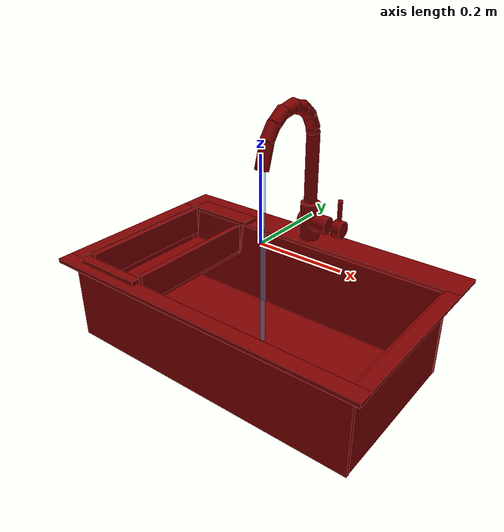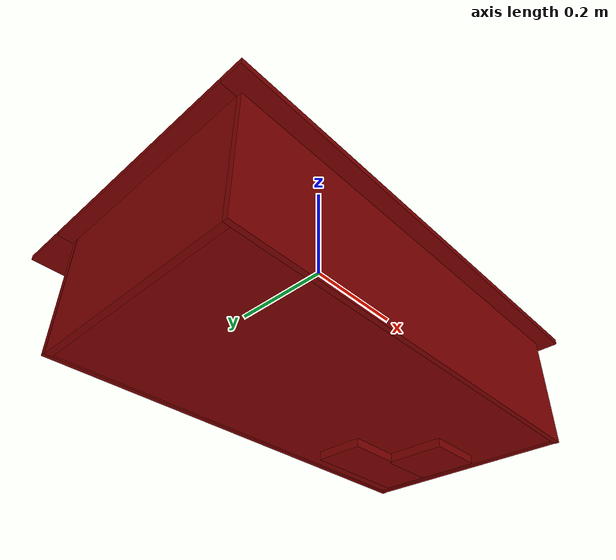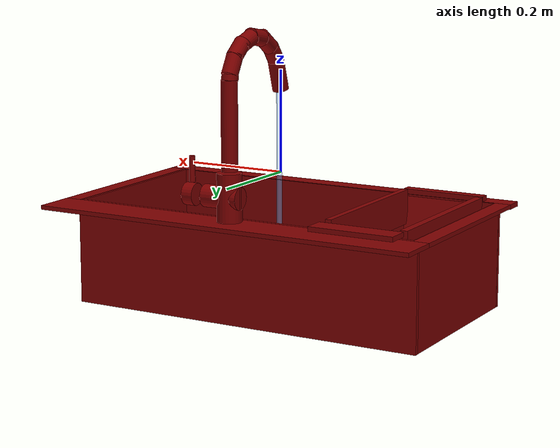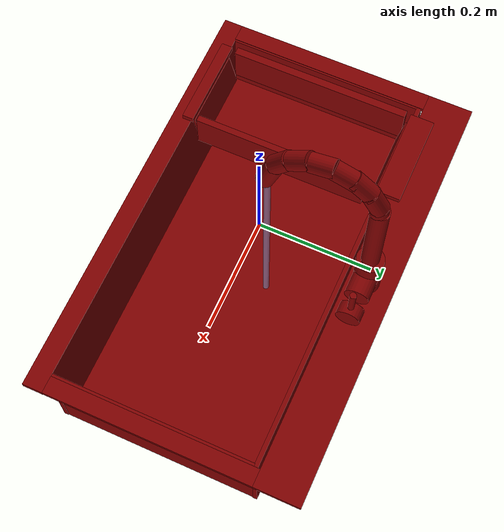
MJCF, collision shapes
<?xml version='1.0' encoding='UTF-8'?>
<mujoco model="model">
  <option timestep="0.002" gravity="0.0 0.0 -9.81"/>
  <compiler angle="radian"/>
  <asset>
    <mesh file="visuals/handle.obj" name="handle_vis"/>
    <mesh file="visuals/Body001.obj" name="Body001_vis"/>
    <mesh file="visuals/Shelf001.obj" name="Shelf001_vis"/>
    <mesh file="visuals/spout.obj" name="spout_vis"/>
    <texture file="visuals/T_BC001.png" name="Body001_material" type="2d"/>
    <material name="Body001_material" rgba="1 1 1 1.0" texture="Body001_material" shininess="0.5" specular="1"/>
    <texture file="visuals/T_BC001.png" name="handle_material" type="2d"/>
    <material name="handle_material" rgba="1 1 1 1.0" texture="handle_material" shininess="0.5" specular="0.3103448502657381"/>
    <texture file="visuals/T_BC001.png" name="Shelf001_material" type="2d"/>
    <material name="Shelf001_material" rgba="1 1 1 1.0" texture="Shelf001_material" shininess="0.5" specular="2"/>
    <texture file="visuals/T_BC001.png" name="spout_material" type="2d"/>
    <material name="spout_material" rgba="1 1 1 1.0" texture="spout_material" shininess="0.5" specular="1"/>
  </asset>
  <default>
    <default class="visual">
      <geom conaffinity="0" contype="0" group="1" type="mesh"/>
    </default>
    <default class="collision">
      <geom group="0" rgba="0.5 0 0 0.5" solimp="0.998 0.998 0.001" solref="0.001 2"/>
    </default>
    <default class="spawn">
      <geom group="0" rgba="1 1 1 0.5" contype="0" conaffinity="0"/>
      <site group="0" rgba="1 1 1 0.5"/>
    </default>
    <default class="region">
      <geom group="1" conaffinity="0" contype="0" rgba="0 1 0 0"/>
    </default>
  </default>
  <worldbody>
    <body>
      <body name="object">
        <geom mesh="Body001_vis" type="mesh" solimp="0.998 0.998 0.001" solref="0.001 1" friction="0.95 0.3 0.1" class="visual" material="Body001_material"/>
        <geom class="collision" type="box" pos="0.00000004 0.20637435 -0.06735937" size="0.39519259333610535 0.04176409915089607 0.004091817419975996" quat="1.0 0.0 0.0 0.0"/>
        <geom class="collision" type="box" pos="-0.00000002 -0.23008915 -0.06822311" size="0.39519232511520386 0.01815597340464592 0.004955556709319353" quat="1.0 0.0 0.0 0.0"/>
        <geom class="collision" type="box" pos="-0.37927532 -0.02353512 -0.06738956" size="0.015911314636468887 0.18962140381336212 0.004121942445635796" quat="1.0 0.0 0.0 0.0"/>
        <geom class="collision" type="box" pos="0.37956685 -0.02353512 -0.06736496" size="0.015619810670614243 0.1896211802959442 0.004097337834537029" quat="1.0 0.0 0.0 0.0"/>
        <geom class="collision" type="box" pos="0.36319739 -0.02948447 -0.16913989" size="0.004510981496423483 0.1830652505159378 0.10467592626810074" quat="1.0 0.0 0.0 0.0"/>
        <geom class="collision" type="box" pos="-0.36474544 -0.02948447 -0.16913989" size="0.005223824642598629 0.1830650120973587 0.10467581450939178" quat="1.0 0.0 0.0 0.0"/>
        <geom class="collision" type="box" pos="-0.00070086 -0.21607165 -0.16913989" size="0.369448184967041 0.004152165725827217 0.10467569530010223" quat="1.0 0.0 0.0 0.0"/>
        <geom class="collision" type="box" pos="-0.00092678 0.15651350 -0.16913989" size="0.36971351504325867 0.003984092269092798 0.10467558354139328" quat="1.0 0.0 0.0 0.0"/>
        <geom class="collision" type="box" pos="-0.00282185 -0.02706097 -0.26766643" size="0.36301255226135254 0.18428730964660645 0.0037265485152602196" quat="1.0 0.0 0.0 0.0"/>
        <geom class="collision" type="cylinder" pos="-0.00332899 0.19647934 -0.01538238" size="0.023983795195817947 0.04595727100968361" quat="1.0 0.0 0.0 0.0"/>
        <geom class="collision" type="cylinder" pos="0.01108128 0.19647934 -0.01658595" size="0.021613165736198425 0.038016535341739655" quat="0.7071068286895752 -0.0 0.7071067690849304 0.0"/>
        <geom class="collision" type="box" pos="0.22211067 0.06790739 -0.27878553" size="0.09791813045740128 0.04313885420560837 0.007659433409571648" quat="1.0 0.0 0.0 0.0"/>
        <geom class="collision" type="box" pos="0.26883179 -0.02330551 -0.27878553" size="0.05119697377085686 0.05309313163161278 0.007659432012587786" quat="1.0 0.0 0.0 0.0"/>
        <body name="handle">
          <joint axis="1.0 0.0 0.0" pos="0.07444862 0.19651009 -0.01711256" limited="true" name="handle_temp_joint" type="hinge" range="-0.7853981633974483 0.7853981633974483" damping="0.5" frictionloss="1" armature="2"/>
          <joint axis="0.0 1.0 0.0" pos="0.07444862 0.19651009 -0.01711256" limited="true" name="handle_joint" type="hinge" range="0 0.5" damping="0.5" frictionloss="1" armature="2"/>
          <geom mesh="handle_vis" type="mesh" solimp="0.998 0.998 0.001" solref="0.001 1" friction="0.95 0.3 0.1" class="visual" material="handle_material"/>
          <geom class="collision" type="cylinder" pos="0.07855663 0.19713252 -0.01680377" size="0.021303892135620117 0.011302345432341099" quat="0.7071068286895752 -0.0 0.7071067690849304 0.0"/>
          <geom name="handle_main" class="collision" type="cylinder" pos="0.07769476 0.19686373 0.03081148" size="0.005681407637894154 0.024712152779102325" quat="1.0 0.0 0.0 0.0"/>
        </body>
        <body name="Shelf001">
          <joint axis="0.0 0.0 1.0" pos="-0.25478467 -0.01744983 -0.09954712" limited="true" name="Shelf001_joint" range="0.0 0.1" type="slide" damping="1" frictionloss="1" armature=".01" stiffness="0.05"/>
          <geom mesh="Shelf001_vis" type="mesh" solimp="0.998 0.998 0.001" solref="0.001 1" friction="0.95 0.3 0.1" class="visual" material="Shelf001_material"/>
          <geom class="collision" type="box" pos="-0.33398774 -0.02822587 -0.08729640" size="0.007228539790958166 0.1687678098678589 0.03499460965394974" quat="1.0 0.0 0.0 0.0"/>
          <geom class="collision" type="box" pos="-0.17308277 -0.03690955 -0.08729640" size="0.005995806772261858 0.16302910447120667 0.03499455377459526" quat="1.0 0.0 0.0 0.0"/>
          <geom class="collision" type="box" pos="-0.24860589 -0.20206940 -0.10036150" size="0.07432298362255096 0.0024261516518890858 0.03369440883398056" quat="0.9940372705459595 0.10904084146022797 0.0 0.0"/>
          <geom class="collision" type="box" pos="-0.24860589 0.14222980 -0.09760116" size="0.07432298362255096 0.0024261516518890858 0.03723553195595741" quat="0.9963814616203308 -0.08499402552843094 -0.0 0.0"/>
          <geom class="collision" type="box" pos="-0.25271779 -0.02975524 -0.13525485" size="0.07255373150110245 0.16592520475387573 0.0029326912481337786" quat="1.0 0.0 0.0 0.0"/>
          <geom class="collision" type="box" pos="-0.25245929 0.17150735 -0.05747816" size="0.08537273108959198 0.022228378802537918 0.004666319582611322" quat="1.0 0.0 0.0 0.0"/>
          <geom class="collision" type="box" pos="-0.25245929 -0.21764038 -0.05787031" size="0.08537261933088303 0.010309925302863121 0.005058464128524065" quat="1.0 0.0 0.0 0.0"/>
        </body>
        <body name="spout">
          <joint axis="0.0 0.0 1.0" pos="-0.00280519 0.19689568 0.13014515" limited="true" name="spout_joint" range="-1.1344640137963142 1.1344640137963142" type="hinge" damping="10"/>
          <site type="cylinder" rgba="0.5 0.75 1 0.5" size="0.005716228857636452 0.21865792572498322" pos="-0.00350536 0.01167345 -0.05062795" name="water"/>
          <geom mesh="spout_vis" type="mesh" solimp="0.998 0.998 0.001" solref="0.001 1" friction="0.95 0.3 0.1" class="visual" material="spout_material"/>
          <geom class="collision" type="cylinder" pos="-0.00364665 0.19572318 0.11842547" size="0.015766173601150513 0.08489116281270981" quat="1.0 0.0 0.0 0.0" name="spout_main"/>
          <geom class="collision" type="cylinder" pos="-0.00364665 0.18448438 0.22890529" size="0.015766173601150513 0.020500902086496353" quat="0.9670015573501587 0.254770427942276 0.0 0.0"/>
          <geom class="collision" type="cylinder" pos="-0.00364665 0.16318922 0.25432944" size="0.015766173601150513 0.020500902086496353" quat="0.9004788994789124 0.4348997473716736 0.0 0.0"/>
          <geom class="collision" type="cylinder" pos="-0.00364665 0.19286940 0.20691466" size="0.015766173601150513 0.005798363126814365" quat="0.9954514503479004 0.09527008980512619 0.0 0.0"/>
          <geom class="collision" type="cylinder" pos="-0.00364665 0.13562762 0.26768228" size="0.015766173601150513 0.020500902086496353" quat="0.8072229027748108 0.5902467370033264 0.0 0.0"/>
          <geom class="collision" type="cylinder" pos="-0.00364665 0.09963213 0.27220744" size="0.015766173601150513 0.020500902086496353" quat="0.6380579471588135 0.7699883580207825 0.0 0.0"/>
          <geom class="collision" type="cylinder" pos="-0.00364665 0.06404803 0.26068890" size="0.015766173601150513 0.020500902086496353" quat="0.46678173542022705 0.8843725323677063 -2.902466588990982e-17 3.50260498311617e-17"/>
          <geom class="collision" type="cylinder" pos="-0.00364665 0.03504595 0.23497784" size="0.015766173601150513 0.020500902086496353" quat="0.3206758201122284 0.9471890330314636 -5.0641876454848075e-17 6.111298377558944e-17"/>
          <geom class="collision" type="cylinder" pos="-0.00364665 0.01599893 0.19159432" size="0.015766173601150513 0.02976146526634693" quat="0.15284669399261475 0.9882498979568481 -7.266236403818553e-17 8.768669034944749e-17"/>
        </body>
        <geom class="region" name="reg_basin" type="box" pos="0.09232056 -0.028024789999999994 -0.16308332" size="0.25805168 0.17850414 0.09915925"/>
        <geom class="region" name="reg_main" type="box" pos="-4.999999997368221e-09 -1.4500000000694513e-07 -0.17484919499999999" size="0.396186485 0.249244895 0.112596795"/>
      </body>
    </body>
  </worldbody>
  <actuator>
    <motor name="handle_joint_actuator" joint="handle_joint" gear="10"/>
    <motor name="handle_temp_joint_actuator" joint="handle_temp_joint" gear="10"/>
    <motor name="Shelf001_joint_actuator" joint="Shelf001_joint" gear="10"/>
    <motor name="spout_joint_actuator" joint="spout_joint" gear="10"/>
  </actuator>
</mujoco>
